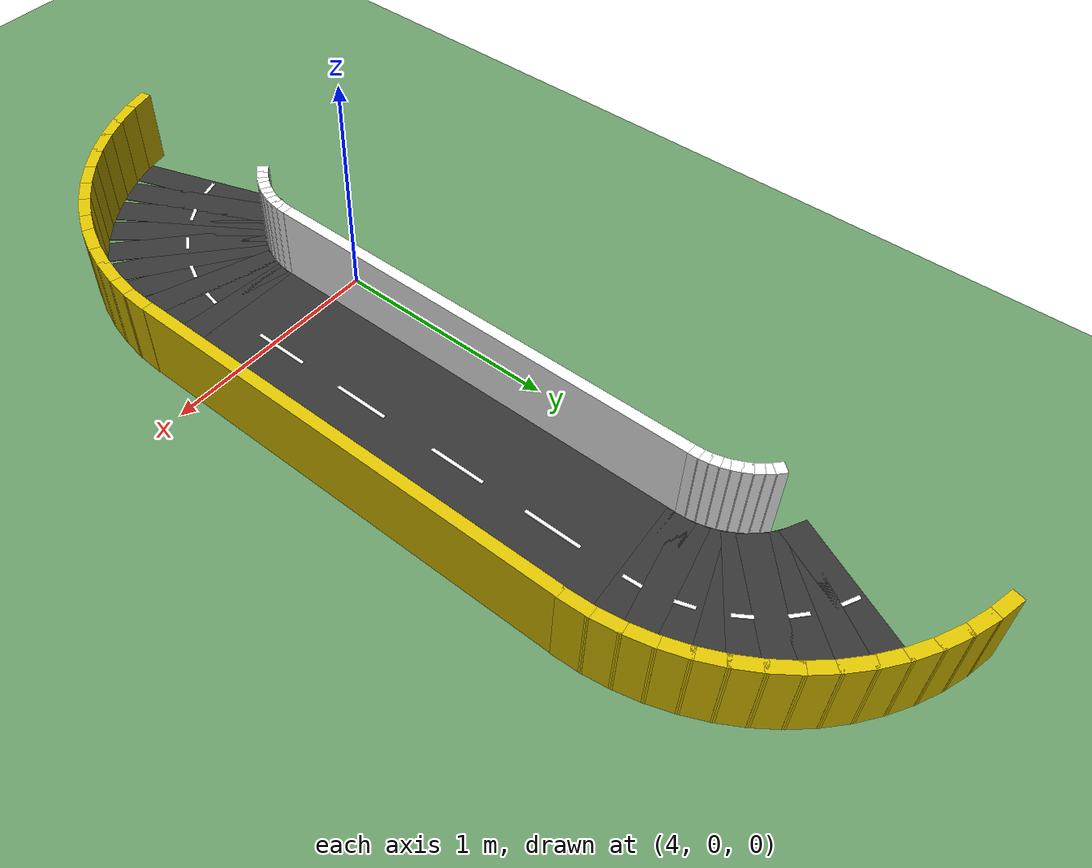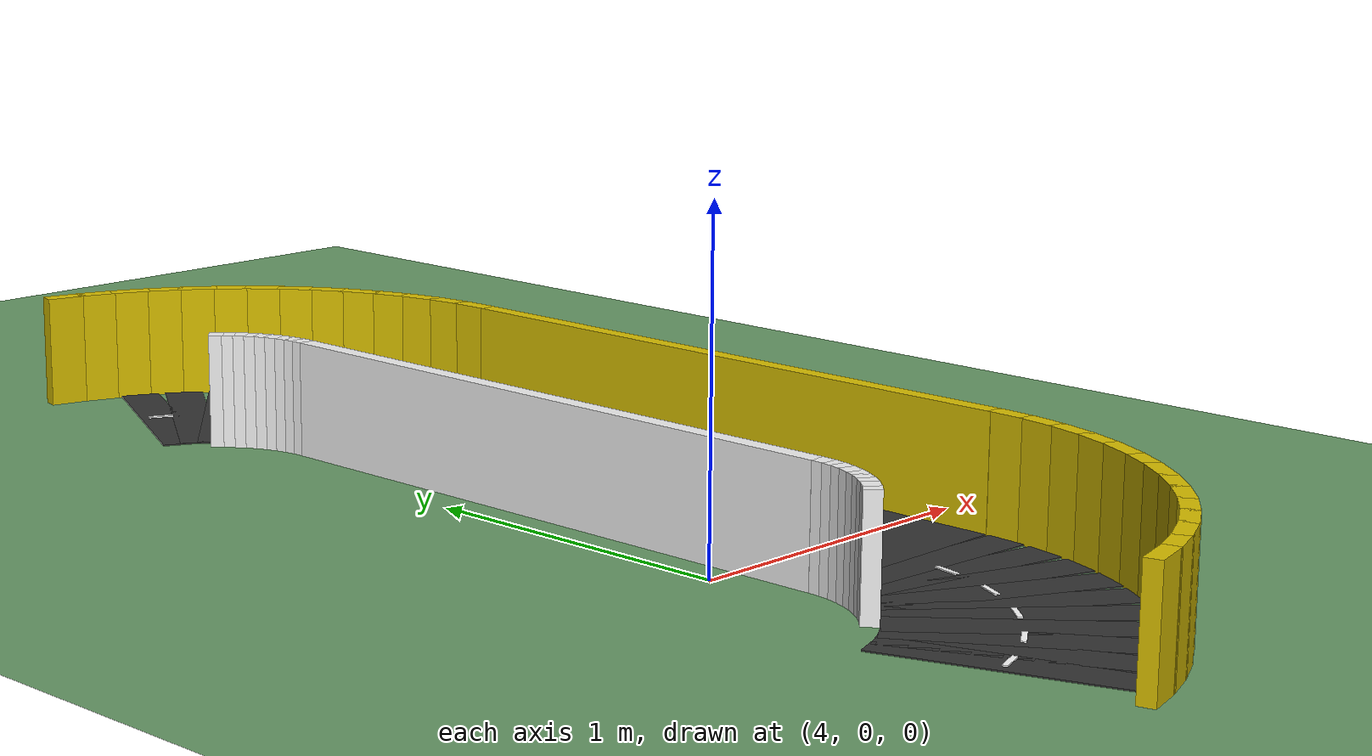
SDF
<sdf version="1.6">
 <world name="city_track">
  <model name="ground_plane">
   <static>true</static>
   <link name="link">
    <collision name="collision">
     <geometry><plane><normal>0 0 1</normal><size>20 20</size></plane></geometry>
     <surface><friction><ode><mu>50</mu><mu2>50</mu2></ode></friction></surface>
    </collision>
    <visual name="visual">
     <geometry><plane><normal>0 0 1</normal><size>20 20</size></plane></geometry>
     <material><ambient>0.4 0.6 0.4 1</ambient><diffuse>0.4 0.6 0.4 1</diffuse></material>
    </visual>
   </link>
  </model>
  <model name="road_right">
   <static>true</static>
   <pose>4.500000 0.750000 0.003000 0 0 0.000000</pose>
   <link name="link">
    <visual name="visual">
     <geometry><box><size>0.700000 2.000000 0.004000</size></box></geometry>
     <material><ambient>0.2 0.2 0.2 1</ambient><diffuse>0.2 0.2 0.2 1</diffuse></material>
    </visual>
   </link>
  </model>
  <model name="road_corner_tr_00">
   <static>true</static>
   <pose>4.498394 1.799052 0.003000 0 0 1.636246</pose>
   <link name="link">
    <visual name="visual">
     <geometry><box><size>0.122718 0.700000 0.004000</size></box></geometry>
     <material><ambient>0.2 0.2 0.2 1</ambient><diffuse>0.2 0.2 0.2 1</diffuse></material>
    </visual>
   </link>
  </model>
  <model name="road_corner_tr_01">
   <static>true</static>
   <pose>4.485589 1.896318 0.003000 0 0 1.767146</pose>
   <link name="link">
    <visual name="visual">
     <geometry><box><size>0.122718 0.700000 0.004000</size></box></geometry>
     <material><ambient>0.2 0.2 0.2 1</ambient><diffuse>0.2 0.2 0.2 1</diffuse></material>
    </visual>
   </link>
  </model>
  <model name="road_corner_tr_02">
   <static>true</static>
   <pose>4.460198 1.991080 0.003000 0 0 1.898046</pose>
   <link name="link">
    <visual name="visual">
     <geometry><box><size>0.122718 0.700000 0.004000</size></box></geometry>
     <material><ambient>0.2 0.2 0.2 1</ambient><diffuse>0.2 0.2 0.2 1</diffuse></material>
    </visual>
   </link>
  </model>
  <model name="road_corner_tr_03">
   <static>true</static>
   <pose>4.422655 2.081717 0.003000 0 0 2.028945</pose>
   <link name="link">
    <visual name="visual">
     <geometry><box><size>0.122718 0.700000 0.004000</size></box></geometry>
     <material><ambient>0.2 0.2 0.2 1</ambient><diffuse>0.2 0.2 0.2 1</diffuse></material>
    </visual>
   </link>
  </model>
  <model name="road_corner_tr_04">
   <static>true</static>
   <pose>4.373602 2.166678 0.003000 0 0 2.159845</pose>
   <link name="link">
    <visual name="visual">
     <geometry><box><size>0.122718 0.700000 0.004000</size></box></geometry>
     <material><ambient>0.2 0.2 0.2 1</ambient><diffuse>0.2 0.2 0.2 1</diffuse></material>
    </visual>
   </link>
  </model>
  <model name="road_corner_tr_05">
   <static>true</static>
   <pose>4.313880 2.244509 0.003000 0 0 2.290745</pose>
   <link name="link">
    <visual name="visual">
     <geometry><box><size>0.122718 0.700000 0.004000</size></box></geometry>
     <material><ambient>0.2 0.2 0.2 1</ambient><diffuse>0.2 0.2 0.2 1</diffuse></material>
    </visual>
   </link>
  </model>
  <model name="road_corner_tr_06">
   <static>true</static>
   <pose>4.244509 2.313880 0.003000 0 0 2.421644</pose>
   <link name="link">
    <visual name="visual">
     <geometry><box><size>0.122718 0.700000 0.004000</size></box></geometry>
     <material><ambient>0.2 0.2 0.2 1</ambient><diffuse>0.2 0.2 0.2 1</diffuse></material>
    </visual>
   </link>
  </model>
  <model name="road_corner_tr_07">
   <static>true</static>
   <pose>4.166678 2.373602 0.003000 0 0 2.552544</pose>
   <link name="link">
    <visual name="visual">
     <geometry><box><size>0.122718 0.700000 0.004000</size></box></geometry>
     <material><ambient>0.2 0.2 0.2 1</ambient><diffuse>0.2 0.2 0.2 1</diffuse></material>
    </visual>
   </link>
  </model>
  <model name="road_corner_tr_08">
   <static>true</static>
   <pose>4.081717 2.422655 0.003000 0 0 2.683444</pose>
   <link name="link">
    <visual name="visual">
     <geometry><box><size>0.122718 0.700000 0.004000</size></box></geometry>
     <material><ambient>0.2 0.2 0.2 1</ambient><diffuse>0.2 0.2 0.2 1</diffuse></material>
    </visual>
   </link>
  </model>
  <model name="road_corner_br_02">
   <static>true</static>
   <pose>3.991080 -0.960198 0.003000 0 0 0.327249</pose>
   <link name="link">
    <visual name="visual">
     <geometry><box><size>0.122718 0.700000 0.004000</size></box></geometry>
     <material><ambient>0.2 0.2 0.2 1</ambient><diffuse>0.2 0.2 0.2 1</diffuse></material>
    </visual>
   </link>
  </model>
  <model name="road_corner_br_03">
   <static>true</static>
   <pose>4.081717 -0.922655 0.003000 0 0 0.458149</pose>
   <link name="link">
    <visual name="visual">
     <geometry><box><size>0.122718 0.700000 0.004000</size></box></geometry>
     <material><ambient>0.2 0.2 0.2 1</ambient><diffuse>0.2 0.2 0.2 1</diffuse></material>
    </visual>
   </link>
  </model>
  <model name="road_corner_br_04">
   <static>true</static>
   <pose>4.166678 -0.873602 0.003000 0 0 0.589049</pose>
   <link name="link">
    <visual name="visual">
     <geometry><box><size>0.122718 0.700000 0.004000</size></box></geometry>
     <material><ambient>0.2 0.2 0.2 1</ambient><diffuse>0.2 0.2 0.2 1</diffuse></material>
    </visual>
   </link>
  </model>
  <model name="road_corner_br_05">
   <static>true</static>
   <pose>4.244509 -0.813880 0.003000 0 0 0.719948</pose>
   <link name="link">
    <visual name="visual">
     <geometry><box><size>0.122718 0.700000 0.004000</size></box></geometry>
     <material><ambient>0.2 0.2 0.2 1</ambient><diffuse>0.2 0.2 0.2 1</diffuse></material>
    </visual>
   </link>
  </model>
  <model name="road_corner_br_06">
   <static>true</static>
   <pose>4.313880 -0.744509 0.003000 0 0 0.850848</pose>
   <link name="link">
    <visual name="visual">
     <geometry><box><size>0.122718 0.700000 0.004000</size></box></geometry>
     <material><ambient>0.2 0.2 0.2 1</ambient><diffuse>0.2 0.2 0.2 1</diffuse></material>
    </visual>
   </link>
  </model>
  <model name="road_corner_br_07">
   <static>true</static>
   <pose>4.373602 -0.666678 0.003000 0 0 0.981748</pose>
   <link name="link">
    <visual name="visual">
     <geometry><box><size>0.122718 0.700000 0.004000</size></box></geometry>
     <material><ambient>0.2 0.2 0.2 1</ambient><diffuse>0.2 0.2 0.2 1</diffuse></material>
    </visual>
   </link>
  </model>
  <model name="road_corner_br_08">
   <static>true</static>
   <pose>4.422655 -0.581717 0.003000 0 0 1.112647</pose>
   <link name="link">
    <visual name="visual">
     <geometry><box><size>0.122718 0.700000 0.004000</size></box></geometry>
     <material><ambient>0.2 0.2 0.2 1</ambient><diffuse>0.2 0.2 0.2 1</diffuse></material>
    </visual>
   </link>
  </model>
  <model name="road_corner_br_09">
   <static>true</static>
   <pose>4.460198 -0.491080 0.003000 0 0 1.243547</pose>
   <link name="link">
    <visual name="visual">
     <geometry><box><size>0.122718 0.700000 0.004000</size></box></geometry>
     <material><ambient>0.2 0.2 0.2 1</ambient><diffuse>0.2 0.2 0.2 1</diffuse></material>
    </visual>
   </link>
  </model>
  <model name="road_corner_br_10">
   <static>true</static>
   <pose>4.485589 -0.396318 0.003000 0 0 1.374447</pose>
   <link name="link">
    <visual name="visual">
     <geometry><box><size>0.122718 0.700000 0.004000</size></box></geometry>
     <material><ambient>0.2 0.2 0.2 1</ambient><diffuse>0.2 0.2 0.2 1</diffuse></material>
    </visual>
   </link>
  </model>
  <model name="road_corner_br_11">
   <static>true</static>
   <pose>4.498394 -0.299052 0.003000 0 0 1.505346</pose>
   <link name="link">
    <visual name="visual">
     <geometry><box><size>0.122718 0.700000 0.004000</size></box></geometry>
     <material><ambient>0.2 0.2 0.2 1</ambient><diffuse>0.2 0.2 0.2 1</diffuse></material>
    </visual>
   </link>
  </model>
  <model name="centerline_right_0">
   <static>true</static>
   <pose>4.500000 0.050000 0.008000 0 0 0.000000</pose>
   <link name="link">
    <visual name="visual">
     <geometry><box><size>0.015000 0.250000 0.004000</size></box></geometry>
     <material><ambient>1 1 1 1</ambient><diffuse>1 1 1 1</diffuse></material>
    </visual>
   </link>
  </model>
  <model name="centerline_right_1">
   <static>true</static>
   <pose>4.500000 0.500000 0.008000 0 0 0.000000</pose>
   <link name="link">
    <visual name="visual">
     <geometry><box><size>0.015000 0.250000 0.004000</size></box></geometry>
     <material><ambient>1 1 1 1</ambient><diffuse>1 1 1 1</diffuse></material>
    </visual>
   </link>
  </model>
  <model name="centerline_right_2">
   <static>true</static>
   <pose>4.500000 1.000000 0.008000 0 0 0.000000</pose>
   <link name="link">
    <visual name="visual">
     <geometry><box><size>0.015000 0.250000 0.004000</size></box></geometry>
     <material><ambient>1 1 1 1</ambient><diffuse>1 1 1 1</diffuse></material>
    </visual>
   </link>
  </model>
  <model name="centerline_right_3">
   <static>true</static>
   <pose>4.500000 1.450000 0.008000 0 0 0.000000</pose>
   <link name="link">
    <visual name="visual">
     <geometry><box><size>0.015000 0.250000 0.004000</size></box></geometry>
     <material><ambient>1 1 1 1</ambient><diffuse>1 1 1 1</diffuse></material>
    </visual>
   </link>
  </model>
  <model name="centerline_road_corner_tr_00">
   <static>true</static>
   <pose>4.498394 1.799052 0.010000 0 0 1.636246</pose>
   <link name="link">
    <visual name="visual">
     <geometry><box><size>0.078540 0.015000 0.004000</size></box></geometry>
     <material><ambient>1 1 1 1</ambient><diffuse>1 1 1 1</diffuse></material>
    </visual>
   </link>
  </model>
  <model name="centerline_road_corner_tr_02">
   <static>true</static>
   <pose>4.460198 1.991080 0.010000 0 0 1.898046</pose>
   <link name="link">
    <visual name="visual">
     <geometry><box><size>0.078540 0.015000 0.004000</size></box></geometry>
     <material><ambient>1 1 1 1</ambient><diffuse>1 1 1 1</diffuse></material>
    </visual>
   </link>
  </model>
  <model name="centerline_road_corner_tr_04">
   <static>true</static>
   <pose>4.373602 2.166678 0.010000 0 0 2.159845</pose>
   <link name="link">
    <visual name="visual">
     <geometry><box><size>0.078540 0.015000 0.004000</size></box></geometry>
     <material><ambient>1 1 1 1</ambient><diffuse>1 1 1 1</diffuse></material>
    </visual>
   </link>
  </model>
  <model name="centerline_road_corner_tr_06">
   <static>true</static>
   <pose>4.244509 2.313880 0.010000 0 0 2.421644</pose>
   <link name="link">
    <visual name="visual">
     <geometry><box><size>0.078540 0.015000 0.004000</size></box></geometry>
     <material><ambient>1 1 1 1</ambient><diffuse>1 1 1 1</diffuse></material>
    </visual>
   </link>
  </model>
  <model name="centerline_road_corner_tr_08">
   <static>true</static>
   <pose>4.081717 2.422655 0.010000 0 0 2.683444</pose>
   <link name="link">
    <visual name="visual">
     <geometry><box><size>0.078540 0.015000 0.004000</size></box></geometry>
     <material><ambient>1 1 1 1</ambient><diffuse>1 1 1 1</diffuse></material>
    </visual>
   </link>
  </model>
  <model name="centerline_road_corner_br_02">
   <static>true</static>
   <pose>3.991080 -0.960198 0.010000 0 0 0.327249</pose>
   <link name="link">
    <visual name="visual">
     <geometry><box><size>0.078540 0.015000 0.004000</size></box></geometry>
     <material><ambient>1 1 1 1</ambient><diffuse>1 1 1 1</diffuse></material>
    </visual>
   </link>
  </model>
  <model name="centerline_road_corner_br_04">
   <static>true</static>
   <pose>4.166678 -0.873602 0.010000 0 0 0.589049</pose>
   <link name="link">
    <visual name="visual">
     <geometry><box><size>0.078540 0.015000 0.004000</size></box></geometry>
     <material><ambient>1 1 1 1</ambient><diffuse>1 1 1 1</diffuse></material>
    </visual>
   </link>
  </model>
  <model name="centerline_road_corner_br_06">
   <static>true</static>
   <pose>4.313880 -0.744509 0.010000 0 0 0.850848</pose>
   <link name="link">
    <visual name="visual">
     <geometry><box><size>0.078540 0.015000 0.004000</size></box></geometry>
     <material><ambient>1 1 1 1</ambient><diffuse>1 1 1 1</diffuse></material>
    </visual>
   </link>
  </model>
  <model name="centerline_road_corner_br_08">
   <static>true</static>
   <pose>4.422655 -0.581717 0.010000 0 0 1.112647</pose>
   <link name="link">
    <visual name="visual">
     <geometry><box><size>0.078540 0.015000 0.004000</size></box></geometry>
     <material><ambient>1 1 1 1</ambient><diffuse>1 1 1 1</diffuse></material>
    </visual>
   </link>
  </model>
  <model name="centerline_road_corner_br_10">
   <static>true</static>
   <pose>4.485589 -0.396318 0.010000 0 0 1.374447</pose>
   <link name="link">
    <visual name="visual">
     <geometry><box><size>0.078540 0.015000 0.004000</size></box></geometry>
     <material><ambient>1 1 1 1</ambient><diffuse>1 1 1 1</diffuse></material>
    </visual>
   </link>
  </model>
  <model name="outer_wall_right">
   <static>true</static>
   <pose>4.875000 0.750000 0.175000 0 0 0.000000</pose>
   <link name="link">
    <collision name="collision">
     <geometry><box><size>0.050000 2.000000 0.350000</size></box></geometry>
    </collision>
    <visual name="visual">
     <geometry><box><size>0.050000 2.000000 0.350000</size></box></geometry>
     <material><ambient>0.85 0.75 0.0 1</ambient><diffuse>0.85 0.75 0.0 1</diffuse></material>
    </visual>
   </link>
  </model>
  <model name="inner_wall_right">
   <static>true</static>
   <pose>4.125000 0.750000 0.175000 0 0 0.000000</pose>
   <link name="link">
    <collision name="collision">
     <geometry><box><size>0.050000 2.000000 0.350000</size></box></geometry>
    </collision>
    <visual name="visual">
     <geometry><box><size>0.050000 2.000000 0.350000</size></box></geometry>
     <material><ambient>0.95 0.95 0.95 1</ambient><diffuse>0.95 0.95 0.95 1</diffuse></material>
    </visual>
   </link>
  </model>
  <model name="outer_wall_corner_tr_00">
   <static>true</static>
   <pose>4.873645 1.805201 0.175000 0 0 1.619884</pose>
   <link name="link">
    <collision name="collision">
     <geometry><box><size>0.127014 0.050000 0.350000</size></box></geometry>
    </collision>
    <visual name="visual">
     <geometry><box><size>0.127014 0.050000 0.350000</size></box></geometry>
     <material><ambient>0.85 0.75 0.0 1</ambient><diffuse>0.85 0.75 0.0 1</diffuse></material>
    </visual>
   </link>
  </model>
  <model name="inner_wall_corner_tr_00">
   <static>true</static>
   <pose>4.124548 1.768400 0.175000 0 0 1.619884</pose>
   <link name="link">
    <collision name="collision">
     <geometry><box><size>0.044179 0.050000 0.350000</size></box></geometry>
    </collision>
    <visual name="visual">
     <geometry><box><size>0.044179 0.050000 0.350000</size></box></geometry>
     <material><ambient>0.95 0.95 0.95 1</ambient><diffuse>0.95 0.95 0.95 1</diffuse></material>
    </visual>
   </link>
  </model>
  <model name="outer_wall_corner_tr_01">
   <static>true</static>
   <pose>4.862824 1.915072 0.175000 0 0 1.718058</pose>
   <link name="link">
    <collision name="collision">
     <geometry><box><size>0.127014 0.050000 0.350000</size></box></geometry>
    </collision>
    <visual name="visual">
     <geometry><box><size>0.127014 0.050000 0.350000</size></box></geometry>
     <material><ambient>0.85 0.75 0.0 1</ambient><diffuse>0.85 0.75 0.0 1</diffuse></material>
    </visual>
   </link>
  </model>
  <model name="inner_wall_corner_tr_01">
   <static>true</static>
   <pose>4.120941 1.805024 0.175000 0 0 1.718058</pose>
   <link name="link">
    <collision name="collision">
     <geometry><box><size>0.044179 0.050000 0.350000</size></box></geometry>
    </collision>
    <visual name="visual">
     <geometry><box><size>0.044179 0.050000 0.350000</size></box></geometry>
     <material><ambient>0.95 0.95 0.95 1</ambient><diffuse>0.95 0.95 0.95 1</diffuse></material>
    </visual>
   </link>
  </model>
  <model name="outer_wall_corner_tr_02">
   <static>true</static>
   <pose>4.841285 2.023353 0.175000 0 0 1.816233</pose>
   <link name="link">
    <collision name="collision">
     <geometry><box><size>0.127014 0.050000 0.350000</size></box></geometry>
    </collision>
    <visual name="visual">
     <geometry><box><size>0.127014 0.050000 0.350000</size></box></geometry>
     <material><ambient>0.85 0.75 0.0 1</ambient><diffuse>0.85 0.75 0.0 1</diffuse></material>
    </visual>
   </link>
  </model>
  <model name="inner_wall_corner_tr_02">
   <static>true</static>
   <pose>4.113762 1.841118 0.175000 0 0 1.816233</pose>
   <link name="link">
    <collision name="collision">
     <geometry><box><size>0.044179 0.050000 0.350000</size></box></geometry>
    </collision>
    <visual name="visual">
     <geometry><box><size>0.044179 0.050000 0.350000</size></box></geometry>
     <material><ambient>0.95 0.95 0.95 1</ambient><diffuse>0.95 0.95 0.95 1</diffuse></material>
    </visual>
   </link>
  </model>
  <model name="outer_wall_corner_tr_03">
   <static>true</static>
   <pose>4.809237 2.129001 0.175000 0 0 1.914408</pose>
   <link name="link">
    <collision name="collision">
     <geometry><box><size>0.127014 0.050000 0.350000</size></box></geometry>
    </collision>
    <visual name="visual">
     <geometry><box><size>0.127014 0.050000 0.350000</size></box></geometry>
     <material><ambient>0.85 0.75 0.0 1</ambient><diffuse>0.85 0.75 0.0 1</diffuse></material>
    </visual>
   </link>
  </model>
  <model name="inner_wall_corner_tr_03">
   <static>true</static>
   <pose>4.103079 1.876334 0.175000 0 0 1.914408</pose>
   <link name="link">
    <collision name="collision">
     <geometry><box><size>0.044179 0.050000 0.350000</size></box></geometry>
    </collision>
    <visual name="visual">
     <geometry><box><size>0.044179 0.050000 0.350000</size></box></geometry>
     <material><ambient>0.95 0.95 0.95 1</ambient><diffuse>0.95 0.95 0.95 1</diffuse></material>
    </visual>
   </link>
  </model>
  <model name="outer_wall_corner_tr_04">
   <static>true</static>
   <pose>4.766988 2.231000 0.175000 0 0 2.012583</pose>
   <link name="link">
    <collision name="collision">
     <geometry><box><size>0.127014 0.050000 0.350000</size></box></geometry>
    </collision>
    <visual name="visual">
     <geometry><box><size>0.127014 0.050000 0.350000</size></box></geometry>
     <material><ambient>0.85 0.75 0.0 1</ambient><diffuse>0.85 0.75 0.0 1</diffuse></material>
    </visual>
   </link>
  </model>
  <model name="inner_wall_corner_tr_04">
   <static>true</static>
   <pose>4.088996 1.910333 0.175000 0 0 2.012583</pose>
   <link name="link">
    <collision name="collision">
     <geometry><box><size>0.044179 0.050000 0.350000</size></box></geometry>
    </collision>
    <visual name="visual">
     <geometry><box><size>0.044179 0.050000 0.350000</size></box></geometry>
     <material><ambient>0.95 0.95 0.95 1</ambient><diffuse>0.95 0.95 0.95 1</diffuse></material>
    </visual>
   </link>
  </model>
  <model name="outer_wall_corner_tr_05">
   <static>true</static>
   <pose>4.714945 2.328365 0.175000 0 0 2.110758</pose>
   <link name="link">
    <collision name="collision">
     <geometry><box><size>0.127014 0.050000 0.350000</size></box></geometry>
    </collision>
    <visual name="visual">
     <geometry><box><size>0.127014 0.050000 0.350000</size></box></geometry>
     <material><ambient>0.85 0.75 0.0 1</ambient><diffuse>0.85 0.75 0.0 1</diffuse></material>
    </visual>
   </link>
  </model>
  <model name="inner_wall_corner_tr_05">
   <static>true</static>
   <pose>4.071648 1.942789 0.175000 0 0 2.110758</pose>
   <link name="link">
    <collision name="collision">
     <geometry><box><size>0.044179 0.050000 0.350000</size></box></geometry>
    </collision>
    <visual name="visual">
     <geometry><box><size>0.044179 0.050000 0.350000</size></box></geometry>
     <material><ambient>0.95 0.95 0.95 1</ambient><diffuse>0.95 0.95 0.95 1</diffuse></material>
    </visual>
   </link>
  </model>
  <model name="outer_wall_corner_tr_06">
   <static>true</static>
   <pose>4.653608 2.420162 0.175000 0 0 2.208932</pose>
   <link name="link">
    <collision name="collision">
     <geometry><box><size>0.127014 0.050000 0.350000</size></box></geometry>
    </collision>
    <visual name="visual">
     <geometry><box><size>0.127014 0.050000 0.350000</size></box></geometry>
     <material><ambient>0.85 0.75 0.0 1</ambient><diffuse>0.85 0.75 0.0 1</diffuse></material>
    </visual>
   </link>
  </model>
  <model name="inner_wall_corner_tr_06">
   <static>true</static>
   <pose>4.051203 1.973387 0.175000 0 0 2.208932</pose>
   <link name="link">
    <collision name="collision">
     <geometry><box><size>0.044179 0.050000 0.350000</size></box></geometry>
    </collision>
    <visual name="visual">
     <geometry><box><size>0.044179 0.050000 0.350000</size></box></geometry>
     <material><ambient>0.95 0.95 0.95 1</ambient><diffuse>0.95 0.95 0.95 1</diffuse></material>
    </visual>
   </link>
  </model>
  <model name="outer_wall_corner_tr_07">
   <static>true</static>
   <pose>4.583570 2.505504 0.175000 0 0 2.307107</pose>
   <link name="link">
    <collision name="collision">
     <geometry><box><size>0.127014 0.050000 0.350000</size></box></geometry>
    </collision>
    <visual name="visual">
     <geometry><box><size>0.127014 0.050000 0.350000</size></box></geometry>
     <material><ambient>0.85 0.75 0.0 1</ambient><diffuse>0.85 0.75 0.0 1</diffuse></material>
    </visual>
   </link>
  </model>
  <model name="inner_wall_corner_tr_07">
   <static>true</static>
   <pose>4.027857 2.001835 0.175000 0 0 2.307107</pose>
   <link name="link">
    <collision name="collision">
     <geometry><box><size>0.044179 0.050000 0.350000</size></box></geometry>
    </collision>
    <visual name="visual">
     <geometry><box><size>0.044179 0.050000 0.350000</size></box></geometry>
     <material><ambient>0.95 0.95 0.95 1</ambient><diffuse>0.95 0.95 0.95 1</diffuse></material>
    </visual>
   </link>
  </model>
  <model name="outer_wall_corner_tr_08">
   <static>true</static>
   <pose>4.505504 2.583570 0.175000 0 0 2.405282</pose>
   <link name="link">
    <collision name="collision">
     <geometry><box><size>0.127014 0.050000 0.350000</size></box></geometry>
    </collision>
    <visual name="visual">
     <geometry><box><size>0.127014 0.050000 0.350000</size></box></geometry>
     <material><ambient>0.85 0.75 0.0 1</ambient><diffuse>0.85 0.75 0.0 1</diffuse></material>
    </visual>
   </link>
  </model>
  <model name="inner_wall_corner_tr_08">
   <static>true</static>
   <pose>4.001835 2.027857 0.175000 0 0 2.405282</pose>
   <link name="link">
    <collision name="collision">
     <geometry><box><size>0.044179 0.050000 0.350000</size></box></geometry>
    </collision>
    <visual name="visual">
     <geometry><box><size>0.044179 0.050000 0.350000</size></box></geometry>
     <material><ambient>0.95 0.95 0.95 1</ambient><diffuse>0.95 0.95 0.95 1</diffuse></material>
    </visual>
   </link>
  </model>
  <model name="outer_wall_corner_tr_09">
   <static>true</static>
   <pose>4.420162 2.653608 0.175000 0 0 2.503457</pose>
   <link name="link">
    <collision name="collision">
     <geometry><box><size>0.127014 0.050000 0.350000</size></box></geometry>
    </collision>
    <visual name="visual">
     <geometry><box><size>0.127014 0.050000 0.350000</size></box></geometry>
     <material><ambient>0.85 0.75 0.0 1</ambient><diffuse>0.85 0.75 0.0 1</diffuse></material>
    </visual>
   </link>
  </model>
  <model name="outer_wall_corner_tr_10">
   <static>true</static>
   <pose>4.328365 2.714945 0.175000 0 0 2.601631</pose>
   <link name="link">
    <collision name="collision">
     <geometry><box><size>0.127014 0.050000 0.350000</size></box></geometry>
    </collision>
    <visual name="visual">
     <geometry><box><size>0.127014 0.050000 0.350000</size></box></geometry>
     <material><ambient>0.85 0.75 0.0 1</ambient><diffuse>0.85 0.75 0.0 1</diffuse></material>
    </visual>
   </link>
  </model>
  <model name="outer_wall_corner_tr_11">
   <static>true</static>
   <pose>4.231000 2.766988 0.175000 0 0 2.699806</pose>
   <link name="link">
    <collision name="collision">
     <geometry><box><size>0.127014 0.050000 0.350000</size></box></geometry>
    </collision>
    <visual name="visual">
     <geometry><box><size>0.127014 0.050000 0.350000</size></box></geometry>
     <material><ambient>0.85 0.75 0.0 1</ambient><diffuse>0.85 0.75 0.0 1</diffuse></material>
    </visual>
   </link>
  </model>
  <model name="outer_wall_corner_tr_12">
   <static>true</static>
   <pose>4.129001 2.809237 0.175000 0 0 2.797981</pose>
   <link name="link">
    <collision name="collision">
     <geometry><box><size>0.127014 0.050000 0.350000</size></box></geometry>
    </collision>
    <visual name="visual">
     <geometry><box><size>0.127014 0.050000 0.350000</size></box></geometry>
     <material><ambient>0.85 0.75 0.0 1</ambient><diffuse>0.85 0.75 0.0 1</diffuse></material>
    </visual>
   </link>
  </model>
  <model name="outer_wall_corner_tr_13">
   <static>true</static>
   <pose>4.023353 2.841285 0.175000 0 0 2.896156</pose>
   <link name="link">
    <collision name="collision">
     <geometry><box><size>0.127014 0.050000 0.350000</size></box></geometry>
    </collision>
    <visual name="visual">
     <geometry><box><size>0.127014 0.050000 0.350000</size></box></geometry>
     <material><ambient>0.85 0.75 0.0 1</ambient><diffuse>0.85 0.75 0.0 1</diffuse></material>
    </visual>
   </link>
  </model>
  <model name="outer_wall_corner_br_02">
   <static>true</static>
   <pose>4.023353 -1.341285 0.175000 0 0 0.245437</pose>
   <link name="link">
    <collision name="collision">
     <geometry><box><size>0.127014 0.050000 0.350000</size></box></geometry>
    </collision>
    <visual name="visual">
     <geometry><box><size>0.127014 0.050000 0.350000</size></box></geometry>
     <material><ambient>0.85 0.75 0.0 1</ambient><diffuse>0.85 0.75 0.0 1</diffuse></material>
    </visual>
   </link>
  </model>
  <model name="outer_wall_corner_br_03">
   <static>true</static>
   <pose>4.129001 -1.309237 0.175000 0 0 0.343612</pose>
   <link name="link">
    <collision name="collision">
     <geometry><box><size>0.127014 0.050000 0.350000</size></box></geometry>
    </collision>
    <visual name="visual">
     <geometry><box><size>0.127014 0.050000 0.350000</size></box></geometry>
     <material><ambient>0.85 0.75 0.0 1</ambient><diffuse>0.85 0.75 0.0 1</diffuse></material>
    </visual>
   </link>
  </model>
  <model name="outer_wall_corner_br_04">
   <static>true</static>
   <pose>4.231000 -1.266988 0.175000 0 0 0.441786</pose>
   <link name="link">
    <collision name="collision">
     <geometry><box><size>0.127014 0.050000 0.350000</size></box></geometry>
    </collision>
    <visual name="visual">
     <geometry><box><size>0.127014 0.050000 0.350000</size></box></geometry>
     <material><ambient>0.85 0.75 0.0 1</ambient><diffuse>0.85 0.75 0.0 1</diffuse></material>
    </visual>
   </link>
  </model>
  <model name="outer_wall_corner_br_05">
   <static>true</static>
   <pose>4.328365 -1.214945 0.175000 0 0 0.539961</pose>
   <link name="link">
    <collision name="collision">
     <geometry><box><size>0.127014 0.050000 0.350000</size></box></geometry>
    </collision>
    <visual name="visual">
     <geometry><box><size>0.127014 0.050000 0.350000</size></box></geometry>
     <material><ambient>0.85 0.75 0.0 1</ambient><diffuse>0.85 0.75 0.0 1</diffuse></material>
    </visual>
   </link>
  </model>
  <model name="outer_wall_corner_br_06">
   <static>true</static>
   <pose>4.420162 -1.153608 0.175000 0 0 0.638136</pose>
   <link name="link">
    <collision name="collision">
     <geometry><box><size>0.127014 0.050000 0.350000</size></box></geometry>
    </collision>
    <visual name="visual">
     <geometry><box><size>0.127014 0.050000 0.350000</size></box></geometry>
     <material><ambient>0.85 0.75 0.0 1</ambient><diffuse>0.85 0.75 0.0 1</diffuse></material>
    </visual>
   </link>
  </model>
  <model name="outer_wall_corner_br_07">
   <static>true</static>
   <pose>4.505504 -1.083570 0.175000 0 0 0.736311</pose>
   <link name="link">
    <collision name="collision">
     <geometry><box><size>0.127014 0.050000 0.350000</size></box></geometry>
    </collision>
    <visual name="visual">
     <geometry><box><size>0.127014 0.050000 0.350000</size></box></geometry>
     <material><ambient>0.85 0.75 0.0 1</ambient><diffuse>0.85 0.75 0.0 1</diffuse></material>
    </visual>
   </link>
  </model>
  <model name="inner_wall_corner_br_07">
   <static>true</static>
   <pose>4.001835 -0.527857 0.175000 0 0 0.736311</pose>
   <link name="link">
    <collision name="collision">
     <geometry><box><size>0.044179 0.050000 0.350000</size></box></geometry>
    </collision>
    <visual name="visual">
     <geometry><box><size>0.044179 0.050000 0.350000</size></box></geometry>
     <material><ambient>0.95 0.95 0.95 1</ambient><diffuse>0.95 0.95 0.95 1</diffuse></material>
    </visual>
   </link>
  </model>
  <model name="outer_wall_corner_br_08">
   <static>true</static>
   <pose>4.583570 -1.005504 0.175000 0 0 0.834486</pose>
   <link name="link">
    <collision name="collision">
     <geometry><box><size>0.127014 0.050000 0.350000</size></box></geometry>
    </collision>
    <visual name="visual">
     <geometry><box><size>0.127014 0.050000 0.350000</size></box></geometry>
     <material><ambient>0.85 0.75 0.0 1</ambient><diffuse>0.85 0.75 0.0 1</diffuse></material>
    </visual>
   </link>
  </model>
  <model name="inner_wall_corner_br_08">
   <static>true</static>
   <pose>4.027857 -0.501835 0.175000 0 0 0.834486</pose>
   <link name="link">
    <collision name="collision">
     <geometry><box><size>0.044179 0.050000 0.350000</size></box></geometry>
    </collision>
    <visual name="visual">
     <geometry><box><size>0.044179 0.050000 0.350000</size></box></geometry>
     <material><ambient>0.95 0.95 0.95 1</ambient><diffuse>0.95 0.95 0.95 1</diffuse></material>
    </visual>
   </link>
  </model>
  <model name="outer_wall_corner_br_09">
   <static>true</static>
   <pose>4.653608 -0.920162 0.175000 0 0 0.932660</pose>
   <link name="link">
    <collision name="collision">
     <geometry><box><size>0.127014 0.050000 0.350000</size></box></geometry>
    </collision>
    <visual name="visual">
     <geometry><box><size>0.127014 0.050000 0.350000</size></box></geometry>
     <material><ambient>0.85 0.75 0.0 1</ambient><diffuse>0.85 0.75 0.0 1</diffuse></material>
    </visual>
   </link>
  </model>
  <model name="inner_wall_corner_br_09">
   <static>true</static>
   <pose>4.051203 -0.473387 0.175000 0 0 0.932660</pose>
   <link name="link">
    <collision name="collision">
     <geometry><box><size>0.044179 0.050000 0.350000</size></box></geometry>
    </collision>
    <visual name="visual">
     <geometry><box><size>0.044179 0.050000 0.350000</size></box></geometry>
     <material><ambient>0.95 0.95 0.95 1</ambient><diffuse>0.95 0.95 0.95 1</diffuse></material>
    </visual>
   </link>
  </model>
  <model name="outer_wall_corner_br_10">
   <static>true</static>
   <pose>4.714945 -0.828365 0.175000 0 0 1.030835</pose>
   <link name="link">
    <collision name="collision">
     <geometry><box><size>0.127014 0.050000 0.350000</size></box></geometry>
    </collision>
    <visual name="visual">
     <geometry><box><size>0.127014 0.050000 0.350000</size></box></geometry>
     <material><ambient>0.85 0.75 0.0 1</ambient><diffuse>0.85 0.75 0.0 1</diffuse></material>
    </visual>
   </link>
  </model>
  <model name="inner_wall_corner_br_10">
   <static>true</static>
   <pose>4.071648 -0.442789 0.175000 0 0 1.030835</pose>
   <link name="link">
    <collision name="collision">
     <geometry><box><size>0.044179 0.050000 0.350000</size></box></geometry>
    </collision>
    <visual name="visual">
     <geometry><box><size>0.044179 0.050000 0.350000</size></box></geometry>
     <material><ambient>0.95 0.95 0.95 1</ambient><diffuse>0.95 0.95 0.95 1</diffuse></material>
    </visual>
   </link>
  </model>
  <model name="outer_wall_corner_br_11">
   <static>true</static>
   <pose>4.766988 -0.731000 0.175000 0 0 1.129010</pose>
   <link name="link">
    <collision name="collision">
     <geometry><box><size>0.127014 0.050000 0.350000</size></box></geometry>
    </collision>
    <visual name="visual">
     <geometry><box><size>0.127014 0.050000 0.350000</size></box></geometry>
     <material><ambient>0.85 0.75 0.0 1</ambient><diffuse>0.85 0.75 0.0 1</diffuse></material>
    </visual>
   </link>
  </model>
  <model name="inner_wall_corner_br_11">
   <static>true</static>
   <pose>4.088996 -0.410333 0.175000 0 0 1.129010</pose>
   <link name="link">
    <collision name="collision">
     <geometry><box><size>0.044179 0.050000 0.350000</size></box></geometry>
    </collision>
    <visual name="visual">
     <geometry><box><size>0.044179 0.050000 0.350000</size></box></geometry>
     <material><ambient>0.95 0.95 0.95 1</ambient><diffuse>0.95 0.95 0.95 1</diffuse></material>
    </visual>
   </link>
  </model>
  <model name="outer_wall_corner_br_12">
   <static>true</static>
   <pose>4.809237 -0.629001 0.175000 0 0 1.227185</pose>
   <link name="link">
    <collision name="collision">
     <geometry><box><size>0.127014 0.050000 0.350000</size></box></geometry>
    </collision>
    <visual name="visual">
     <geometry><box><size>0.127014 0.050000 0.350000</size></box></geometry>
     <material><ambient>0.85 0.75 0.0 1</ambient><diffuse>0.85 0.75 0.0 1</diffuse></material>
    </visual>
   </link>
  </model>
  <model name="inner_wall_corner_br_12">
   <static>true</static>
   <pose>4.103079 -0.376334 0.175000 0 0 1.227185</pose>
   <link name="link">
    <collision name="collision">
     <geometry><box><size>0.044179 0.050000 0.350000</size></box></geometry>
    </collision>
    <visual name="visual">
     <geometry><box><size>0.044179 0.050000 0.350000</size></box></geometry>
     <material><ambient>0.95 0.95 0.95 1</ambient><diffuse>0.95 0.95 0.95 1</diffuse></material>
    </visual>
   </link>
  </model>
  <model name="outer_wall_corner_br_13">
   <static>true</static>
   <pose>4.841285 -0.523353 0.175000 0 0 1.325359</pose>
   <link name="link">
    <collision name="collision">
     <geometry><box><size>0.127014 0.050000 0.350000</size></box></geometry>
    </collision>
    <visual name="visual">
     <geometry><box><size>0.127014 0.050000 0.350000</size></box></geometry>
     <material><ambient>0.85 0.75 0.0 1</ambient><diffuse>0.85 0.75 0.0 1</diffuse></material>
    </visual>
   </link>
  </model>
  <model name="inner_wall_corner_br_13">
   <static>true</static>
   <pose>4.113762 -0.341118 0.175000 0 0 1.325359</pose>
   <link name="link">
    <collision name="collision">
     <geometry><box><size>0.044179 0.050000 0.350000</size></box></geometry>
    </collision>
    <visual name="visual">
     <geometry><box><size>0.044179 0.050000 0.350000</size></box></geometry>
     <material><ambient>0.95 0.95 0.95 1</ambient><diffuse>0.95 0.95 0.95 1</diffuse></material>
    </visual>
   </link>
  </model>
  <model name="outer_wall_corner_br_14">
   <static>true</static>
   <pose>4.862824 -0.415072 0.175000 0 0 1.423534</pose>
   <link name="link">
    <collision name="collision">
     <geometry><box><size>0.127014 0.050000 0.350000</size></box></geometry>
    </collision>
    <visual name="visual">
     <geometry><box><size>0.127014 0.050000 0.350000</size></box></geometry>
     <material><ambient>0.85 0.75 0.0 1</ambient><diffuse>0.85 0.75 0.0 1</diffuse></material>
    </visual>
   </link>
  </model>
  <model name="inner_wall_corner_br_14">
   <static>true</static>
   <pose>4.120941 -0.305024 0.175000 0 0 1.423534</pose>
   <link name="link">
    <collision name="collision">
     <geometry><box><size>0.044179 0.050000 0.350000</size></box></geometry>
    </collision>
    <visual name="visual">
     <geometry><box><size>0.044179 0.050000 0.350000</size></box></geometry>
     <material><ambient>0.95 0.95 0.95 1</ambient><diffuse>0.95 0.95 0.95 1</diffuse></material>
    </visual>
   </link>
  </model>
  <model name="outer_wall_corner_br_15">
   <static>true</static>
   <pose>4.873645 -0.305201 0.175000 0 0 1.521709</pose>
   <link name="link">
    <collision name="collision">
     <geometry><box><size>0.127014 0.050000 0.350000</size></box></geometry>
    </collision>
    <visual name="visual">
     <geometry><box><size>0.127014 0.050000 0.350000</size></box></geometry>
     <material><ambient>0.85 0.75 0.0 1</ambient><diffuse>0.85 0.75 0.0 1</diffuse></material>
    </visual>
   </link>
  </model>
  <model name="inner_wall_corner_br_15">
   <static>true</static>
   <pose>4.124548 -0.268400 0.175000 0 0 1.521709</pose>
   <link name="link">
    <collision name="collision">
     <geometry><box><size>0.044179 0.050000 0.350000</size></box></geometry>
    </collision>
    <visual name="visual">
     <geometry><box><size>0.044179 0.050000 0.350000</size></box></geometry>
     <material><ambient>0.95 0.95 0.95 1</ambient><diffuse>0.95 0.95 0.95 1</diffuse></material>
    </visual>
   </link>
  </model>
 </world>
</sdf>
